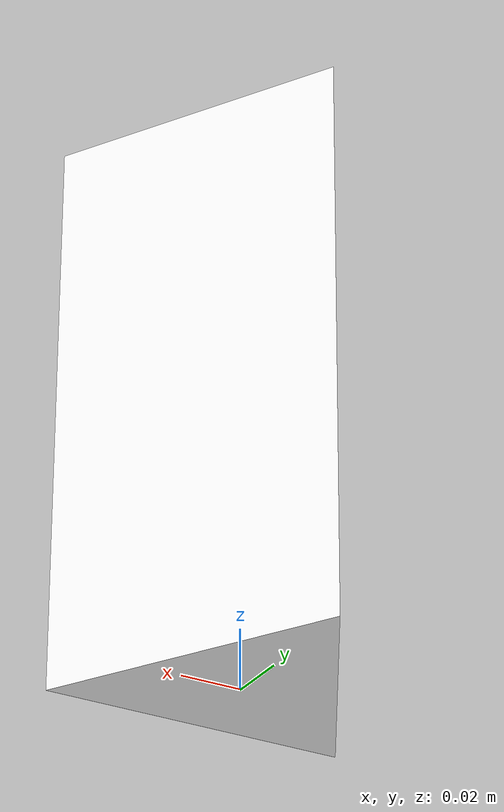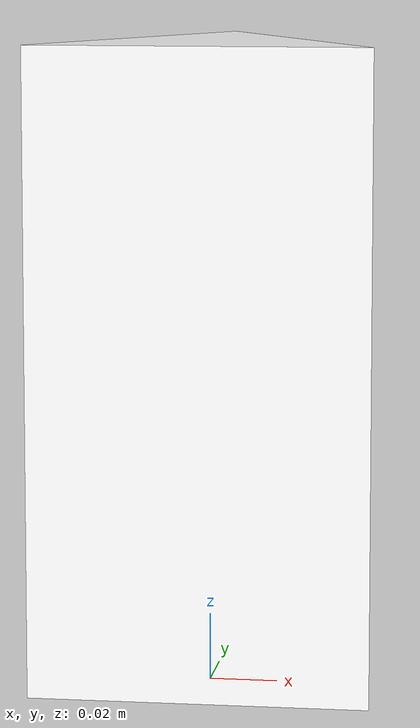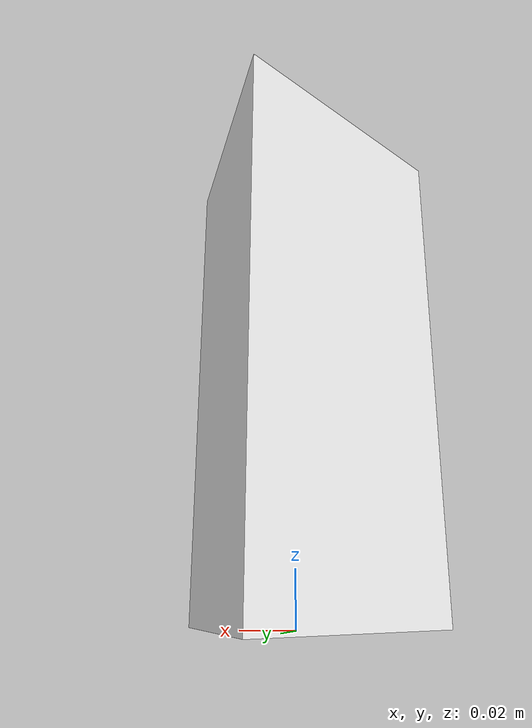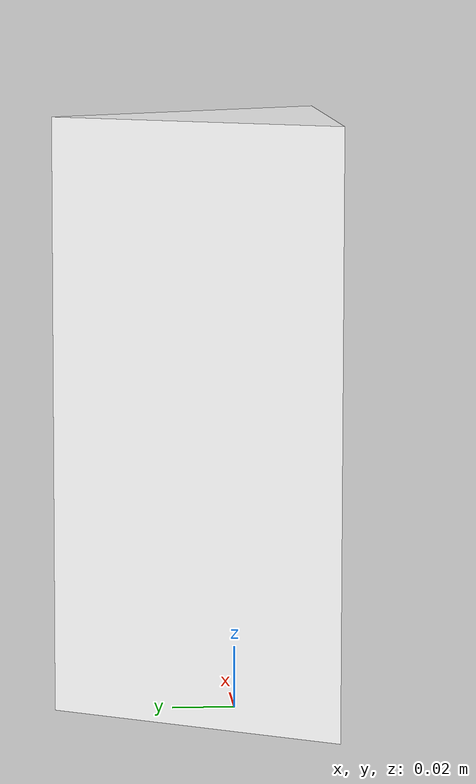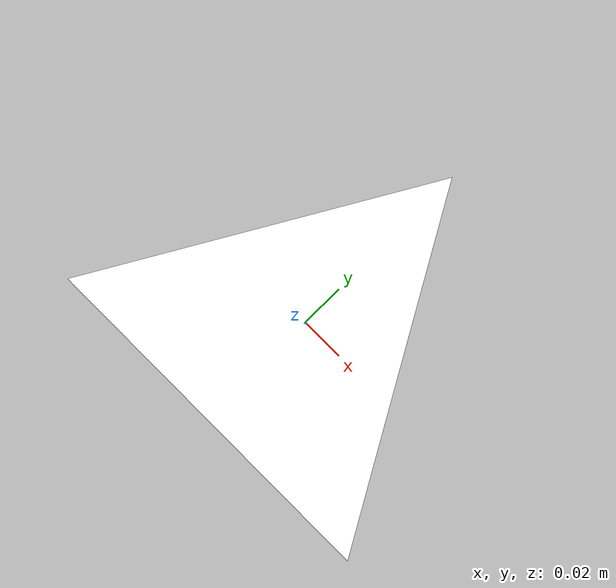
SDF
<?xml version="1.0" ?>
<sdf version="1.5">
    <model name='triangular_prism'>
      <static>1</static>
      <link name='link'>
        <collision name='collision'>
          <geometry>
            <mesh>
              <uri>model://triangular_prism/meshes/triangular_prism.dae</uri>
              <scale>1 1 1</scale>
            </mesh>
          </geometry>
          <max_contacts>10</max_contacts>
          <surface>
            <contact>
              <ode/>
            </contact>
            <bounce/>
            <friction>
              <ode/>
            </friction>
          </surface>
        </collision>
        <visual name='visual'>
          <cast_shadows>0</cast_shadows>
          <geometry>
            <mesh>
              <uri>model://triangular_prism/meshes/triangular_prism.dae</uri>
              <scale>1 1 1</scale>
            </mesh>
          </geometry>
        </visual>
        <self_collide>0</self_collide>
        <kinematic>0</kinematic>
        <gravity>1</gravity>
      </link>
      <pose>0 0 0 0 -0 0</pose>
    </model>
</sdf>
